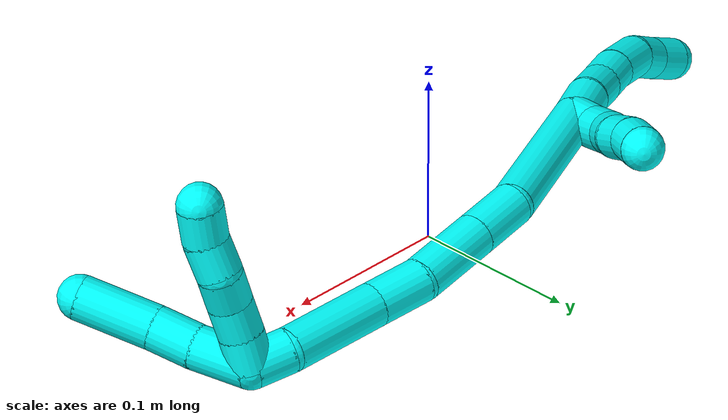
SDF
<sdf version="1.7">
 <world name="default">
  <model name="3">
   <static>0</static>
   <link name="3">
    <collision name="collision-cylinder-e_1_2_8">
     <pose>-0.004621 0.001472 -0.012019 -3.01969 -0.364564 2.50214</pose>
     <geometry><cylinder><radius>0.0125</radius><length>0.02592</length></cylinder></geometry>
     <surface>
      <friction><ode><mu>1.16</mu><mu2>1.16</mu2><slip1>0</slip1><slip2>0</slip2></ode></friction>
      <contact><ode><kp>1e+06</kp><kd>1</kd><max_vel>0</max_vel><min_depth>0.001</min_depth></ode></contact>
     </surface>
    </collision>
    <visual name="visual-cylinder-e_1_2_8">
     <pose>-0.004621 0.001472 -0.012019 -3.01969 -0.364564 2.50214</pose>
     <geometry><cylinder><radius>0.0125</radius><length>0.02592</length></cylinder></geometry>
     <material><ambient>0.003922 1 0.996078 1</ambient></material>
    </visual>
    <collision name="collision-cylinder-e_2_8_9">
     <pose>-0.012437 0.005878 -0.036354 -2.9078 -0.24717 1.62695</pose>
     <geometry><cylinder><radius>0.0125</radius><length>0.026118</length></cylinder></geometry>
     <surface>
      <friction><ode><mu>1.16</mu><mu2>1.16</mu2><slip1>0</slip1><slip2>0</slip2></ode></friction>
      <contact><ode><kp>1e+06</kp><kd>1</kd><max_vel>0</max_vel><min_depth>0.001</min_depth></ode></contact>
     </surface>
    </collision>
    <visual name="visual-cylinder-e_2_8_9">
     <pose>-0.012437 0.005878 -0.036354 -2.9078 -0.24717 1.62695</pose>
     <geometry><cylinder><radius>0.0125</radius><length>0.026118</length></cylinder></geometry>
     <material><ambient>0.003922 1 0.996078 1</ambient></material>
    </visual>
    <collision name="collision-cylinder-e_3_9_10">
     <pose>-0.019756 0.011293 -0.060261 -2.93068 -0.334893 2.02264</pose>
     <geometry><cylinder><radius>0.0125</radius><length>0.025099</length></cylinder></geometry>
     <surface>
      <friction><ode><mu>1.16</mu><mu2>1.16</mu2><slip1>0</slip1><slip2>0</slip2></ode></friction>
      <contact><ode><kp>1e+06</kp><kd>1</kd><max_vel>0</max_vel><min_depth>0.001</min_depth></ode></contact>
     </surface>
    </collision>
    <visual name="visual-cylinder-e_3_9_10">
     <pose>-0.019756 0.011293 -0.060261 -2.93068 -0.334893 2.02264</pose>
     <geometry><cylinder><radius>0.0125</radius><length>0.025099</length></cylinder></geometry>
     <material><ambient>0.003922 1 0.996078 1</ambient></material>
    </visual>
    <collision name="collision-cylinder-e_4_10_11">
     <pose>-0.028992 0.018709 -0.085848 -2.80265 -0.331661 1.54868</pose>
     <geometry><cylinder><radius>0.0125</radius><length>0.031395</length></cylinder></geometry>
     <surface>
      <friction><ode><mu>1.16</mu><mu2>1.16</mu2><slip1>0</slip1><slip2>0</slip2></ode></friction>
      <contact><ode><kp>1e+06</kp><kd>1</kd><max_vel>0</max_vel><min_depth>0.001</min_depth></ode></contact>
     </surface>
    </collision>
    <visual name="visual-cylinder-e_4_10_11">
     <pose>-0.028992 0.018709 -0.085848 -2.80265 -0.331661 1.54868</pose>
     <geometry><cylinder><radius>0.0125</radius><length>0.031395</length></cylinder></geometry>
     <material><ambient>0.003922 1 0.996078 1</ambient></material>
    </visual>
    <collision name="collision-cylinder-e_5_11_12">
     <pose>-0.035892 0.029492 -0.107972 -2.51778 -0.176807 0.536534</pose>
     <geometry><cylinder><radius>0.0125</radius><length>0.020342</length></cylinder></geometry>
     <surface>
      <friction><ode><mu>1.16</mu><mu2>1.16</mu2><slip1>0</slip1><slip2>0</slip2></ode></friction>
      <contact><ode><kp>1e+06</kp><kd>1</kd><max_vel>0</max_vel><min_depth>0.001</min_depth></ode></contact>
     </surface>
    </collision>
    <visual name="visual-cylinder-e_5_11_12">
     <pose>-0.035892 0.029492 -0.107972 -2.51778 -0.176807 0.536534</pose>
     <geometry><cylinder><radius>0.0125</radius><length>0.020342</length></cylinder></geometry>
     <material><ambient>0.003922 1 0.996078 1</ambient></material>
    </visual>
    <collision name="collision-cylinder-e_6_12_6">
     <pose>-0.040844 0.042069 -0.123603 -2.41065 -0.304066 0.761694</pose>
     <geometry><cylinder><radius>0.0125</radius><length>0.021127</length></cylinder></geometry>
     <surface>
      <friction><ode><mu>1.16</mu><mu2>1.16</mu2><slip1>0</slip1><slip2>0</slip2></ode></friction>
      <contact><ode><kp>1e+06</kp><kd>1</kd><max_vel>0</max_vel><min_depth>0.001</min_depth></ode></contact>
     </surface>
    </collision>
    <visual name="visual-cylinder-e_6_12_6">
     <pose>-0.040844 0.042069 -0.123603 -2.41065 -0.304066 0.761694</pose>
     <geometry><cylinder><radius>0.0125</radius><length>0.021127</length></cylinder></geometry>
     <material><ambient>0.003922 1 0.996078 1</ambient></material>
    </visual>
    <collision name="collision-cylinder-e_1_2_13">
     <pose>-0.003102 0.004168 0.008544 -0.453892 -0.31541 0.073413</pose>
     <geometry><cylinder><radius>0.0125</radius><length>0.02</length></cylinder></geometry>
     <surface>
      <friction><ode><mu>1.16</mu><mu2>1.16</mu2><slip1>0</slip1><slip2>0</slip2></ode></friction>
      <contact><ode><kp>1e+06</kp><kd>1</kd><max_vel>0</max_vel><min_depth>0.001</min_depth></ode></contact>
     </surface>
    </collision>
    <visual name="visual-cylinder-e_1_2_13">
     <pose>-0.003102 0.004168 0.008544 -0.453892 -0.31541 0.073413</pose>
     <geometry><cylinder><radius>0.0125</radius><length>0.02</length></cylinder></geometry>
     <material><ambient>0.003922 1 0.996078 1</ambient></material>
    </visual>
    <collision name="collision-cylinder-e_2_13_14">
     <pose>-0.009479 0.010527 0.026279 -0.233956 -0.333662 0.039573</pose>
     <geometry><cylinder><radius>0.0125</radius><length>0.02</length></cylinder></geometry>
     <surface>
      <friction><ode><mu>1.16</mu><mu2>1.16</mu2><slip1>0</slip1><slip2>0</slip2></ode></friction>
      <contact><ode><kp>1e+06</kp><kd>1</kd><max_vel>0</max_vel><min_depth>0.001</min_depth></ode></contact>
     </surface>
    </collision>
    <visual name="visual-cylinder-e_2_13_14">
     <pose>-0.009479 0.010527 0.026279 -0.233956 -0.333662 0.039573</pose>
     <geometry><cylinder><radius>0.0125</radius><length>0.02</length></cylinder></geometry>
     <material><ambient>0.003922 1 0.996078 1</ambient></material>
    </visual>
    <collision name="collision-cylinder-e_3_14_15">
     <pose>-0.014735 0.012267 0.045262 0.045938 -0.199367 -0.004595</pose>
     <geometry><cylinder><radius>0.0125</radius><length>0.02</length></cylinder></geometry>
     <surface>
      <friction><ode><mu>1.16</mu><mu2>1.16</mu2><slip1>0</slip1><slip2>0</slip2></ode></friction>
      <contact><ode><kp>1e+06</kp><kd>1</kd><max_vel>0</max_vel><min_depth>0.001</min_depth></ode></contact>
     </surface>
    </collision>
    <visual name="visual-cylinder-e_3_14_15">
     <pose>-0.014735 0.012267 0.045262 0.045938 -0.199367 -0.004595</pose>
     <geometry><cylinder><radius>0.0125</radius><length>0.02</length></cylinder></geometry>
     <material><ambient>0.003922 1 0.996078 1</ambient></material>
    </visual>
    <collision name="collision-cylinder-e_4_15_16">
     <pose>-0.020498 0.012954 0.06424 -0.123106 -0.387941 0.024212</pose>
     <geometry><cylinder><radius>0.0125</radius><length>0.02</length></cylinder></geometry>
     <surface>
      <friction><ode><mu>1.16</mu><mu2>1.16</mu2><slip1>0</slip1><slip2>0</slip2></ode></friction>
      <contact><ode><kp>1e+06</kp><kd>1</kd><max_vel>0</max_vel><min_depth>0.001</min_depth></ode></contact>
     </surface>
    </collision>
    <visual name="visual-cylinder-e_4_15_16">
     <pose>-0.020498 0.012954 0.06424 -0.123106 -0.387941 0.024212</pose>
     <geometry><cylinder><radius>0.0125</radius><length>0.02</length></cylinder></geometry>
     <material><ambient>0.003922 1 0.996078 1</ambient></material>
    </visual>
    <collision name="collision-cylinder-e_5_16_5">
     <pose>-0.025942 0.015524 0.083184 -0.145832 -0.166892 0.012219</pose>
     <geometry><cylinder><radius>0.0125</radius><length>0.02</length></cylinder></geometry>
     <surface>
      <friction><ode><mu>1.16</mu><mu2>1.16</mu2><slip1>0</slip1><slip2>0</slip2></ode></friction>
      <contact><ode><kp>1e+06</kp><kd>1</kd><max_vel>0</max_vel><min_depth>0.001</min_depth></ode></contact>
     </surface>
    </collision>
    <visual name="visual-cylinder-e_5_16_5">
     <pose>-0.025942 0.015524 0.083184 -0.145832 -0.166892 0.012219</pose>
     <geometry><cylinder><radius>0.0125</radius><length>0.02</length></cylinder></geometry>
     <material><ambient>0.003922 1 0.996078 1</ambient></material>
    </visual>
    <collision name="collision-cylinder-e_1_2_17">
     <pose>0.021703 -0.006695 0.047066 0.141309 0.42826 0.030778</pose>
     <geometry><cylinder><radius>0.0125</radius><length>0.104518</length></cylinder></geometry>
     <surface>
      <friction><ode><mu>1.16</mu><mu2>1.16</mu2><slip1>0</slip1><slip2>0</slip2></ode></friction>
      <contact><ode><kp>1e+06</kp><kd>1</kd><max_vel>0</max_vel><min_depth>0.001</min_depth></ode></contact>
     </surface>
    </collision>
    <visual name="visual-cylinder-e_1_2_17">
     <pose>0.021703 -0.006695 0.047066 0.141309 0.42826 0.030778</pose>
     <geometry><cylinder><radius>0.0125</radius><length>0.104518</length></cylinder></geometry>
     <material><ambient>0.003922 1 0.996078 1</ambient></material>
    </visual>
    <collision name="collision-cylinder-e_2_17_18">
     <pose>0.054396 -0.017763 0.10639 0.342624 0.701289 0.12639</pose>
     <geometry><cylinder><radius>0.0125</radius><length>0.034069</length></cylinder></geometry>
     <surface>
      <friction><ode><mu>1.16</mu><mu2>1.16</mu2><slip1>0</slip1><slip2>0</slip2></ode></friction>
      <contact><ode><kp>1e+06</kp><kd>1</kd><max_vel>0</max_vel><min_depth>0.001</min_depth></ode></contact>
     </surface>
    </collision>
    <visual name="visual-cylinder-e_2_17_18">
     <pose>0.054396 -0.017763 0.10639 0.342624 0.701289 0.12639</pose>
     <geometry><cylinder><radius>0.0125</radius><length>0.034069</length></cylinder></geometry>
     <material><ambient>0.003922 1 0.996078 1</ambient></material>
    </visual>
    <collision name="collision-cylinder-e_3_18_19">
     <pose>0.080913 -0.028348 0.135778 0.347889 0.705679 0.129238</pose>
     <geometry><cylinder><radius>0.0125</radius><length>0.047878</length></cylinder></geometry>
     <surface>
      <friction><ode><mu>1.16</mu><mu2>1.16</mu2><slip1>0</slip1><slip2>0</slip2></ode></friction>
      <contact><ode><kp>1e+06</kp><kd>1</kd><max_vel>0</max_vel><min_depth>0.001</min_depth></ode></contact>
     </surface>
    </collision>
    <visual name="visual-cylinder-e_3_18_19">
     <pose>0.080913 -0.028348 0.135778 0.347889 0.705679 0.129238</pose>
     <geometry><cylinder><radius>0.0125</radius><length>0.047878</length></cylinder></geometry>
     <material><ambient>0.003922 1 0.996078 1</ambient></material>
    </visual>
    <collision name="collision-cylinder-e_4_19_20">
     <pose>0.108057 -0.041039 0.161668 0.636857 0.817502 0.283653</pose>
     <geometry><cylinder><radius>0.0125</radius><length>0.031857</length></cylinder></geometry>
     <surface>
      <friction><ode><mu>1.16</mu><mu2>1.16</mu2><slip1>0</slip1><slip2>0</slip2></ode></friction>
      <contact><ode><kp>1e+06</kp><kd>1</kd><max_vel>0</max_vel><min_depth>0.001</min_depth></ode></contact>
     </surface>
    </collision>
    <visual name="visual-cylinder-e_4_19_20">
     <pose>0.108057 -0.041039 0.161668 0.636857 0.817502 0.283653</pose>
     <geometry><cylinder><radius>0.0125</radius><length>0.031857</length></cylinder></geometry>
     <material><ambient>0.003922 1 0.996078 1</ambient></material>
    </visual>
    <collision name="collision-cylinder-e_5_20_21">
     <pose>0.139246 -0.059574 0.189225 0.570268 0.719615 0.219647</pose>
     <geometry><cylinder><radius>0.0125</radius><length>0.059385</length></cylinder></geometry>
     <surface>
      <friction><ode><mu>1.16</mu><mu2>1.16</mu2><slip1>0</slip1><slip2>0</slip2></ode></friction>
      <contact><ode><kp>1e+06</kp><kd>1</kd><max_vel>0</max_vel><min_depth>0.001</min_depth></ode></contact>
     </surface>
    </collision>
    <visual name="visual-cylinder-e_5_20_21">
     <pose>0.139246 -0.059574 0.189225 0.570268 0.719615 0.219647</pose>
     <geometry><cylinder><radius>0.0125</radius><length>0.059385</length></cylinder></geometry>
     <material><ambient>0.003922 1 0.996078 1</ambient></material>
    </visual>
    <collision name="collision-cylinder-e_6_21_1">
     <pose>0.167723 -0.076821 0.212258 0.88647 0.925814 0.46528</pose>
     <geometry><cylinder><radius>0.0125</radius><length>0.022293</length></cylinder></geometry>
     <surface>
      <friction><ode><mu>1.16</mu><mu2>1.16</mu2><slip1>0</slip1><slip2>0</slip2></ode></friction>
      <contact><ode><kp>1e+06</kp><kd>1</kd><max_vel>0</max_vel><min_depth>0.001</min_depth></ode></contact>
     </surface>
    </collision>
    <visual name="visual-cylinder-e_6_21_1">
     <pose>0.167723 -0.076821 0.212258 0.88647 0.925814 0.46528</pose>
     <geometry><cylinder><radius>0.0125</radius><length>0.022293</length></cylinder></geometry>
     <material><ambient>0.003922 1 0.996078 1</ambient></material>
    </visual>
    <collision name="collision-cylinder-e_1_1_22">
     <pose>0.184034 -0.094503 0.210223 2.0361 0.487183 0.765957</pose>
     <geometry><cylinder><radius>0.0125</radius><length>0.031629</length></cylinder></geometry>
     <surface>
      <friction><ode><mu>1.16</mu><mu2>1.16</mu2><slip1>0</slip1><slip2>0</slip2></ode></friction>
      <contact><ode><kp>1e+06</kp><kd>1</kd><max_vel>0</max_vel><min_depth>0.001</min_depth></ode></contact>
     </surface>
    </collision>
    <visual name="visual-cylinder-e_1_1_22">
     <pose>0.184034 -0.094503 0.210223 2.0361 0.487183 0.765957</pose>
     <geometry><cylinder><radius>0.0125</radius><length>0.031629</length></cylinder></geometry>
     <material><ambient>0.003922 1 0.996078 1</ambient></material>
    </visual>
    <collision name="collision-cylinder-e_2_22_23">
     <pose>0.196154 -0.117596 0.199395 1.97673 0.38792 0.579664</pose>
     <geometry><cylinder><radius>0.0125</radius><length>0.024937</length></cylinder></geometry>
     <surface>
      <friction><ode><mu>1.16</mu><mu2>1.16</mu2><slip1>0</slip1><slip2>0</slip2></ode></friction>
      <contact><ode><kp>1e+06</kp><kd>1</kd><max_vel>0</max_vel><min_depth>0.001</min_depth></ode></contact>
     </surface>
    </collision>
    <visual name="visual-cylinder-e_2_22_23">
     <pose>0.196154 -0.117596 0.199395 1.97673 0.38792 0.579664</pose>
     <geometry><cylinder><radius>0.0125</radius><length>0.024937</length></cylinder></geometry>
     <material><ambient>0.003922 1 0.996078 1</ambient></material>
    </visual>
    <collision name="collision-cylinder-e_3_23_4">
     <pose>0.209698 -0.147149 0.188955 1.87181 0.418629 0.561511</pose>
     <geometry><cylinder><radius>0.0125</radius><length>0.043434</length></cylinder></geometry>
     <surface>
      <friction><ode><mu>1.16</mu><mu2>1.16</mu2><slip1>0</slip1><slip2>0</slip2></ode></friction>
      <contact><ode><kp>1e+06</kp><kd>1</kd><max_vel>0</max_vel><min_depth>0.001</min_depth></ode></contact>
     </surface>
    </collision>
    <visual name="visual-cylinder-e_3_23_4">
     <pose>0.209698 -0.147149 0.188955 1.87181 0.418629 0.561511</pose>
     <geometry><cylinder><radius>0.0125</radius><length>0.043434</length></cylinder></geometry>
     <material><ambient>0.003922 1 0.996078 1</ambient></material>
    </visual>
    <collision name="collision-cylinder-e_1_1_24">
     <pose>0.17131 -0.09039 0.217732 1.42397 -0.560964 -0.487334</pose>
     <geometry><cylinder><radius>0.0125</radius><length>0.02</length></cylinder></geometry>
     <surface>
      <friction><ode><mu>1.16</mu><mu2>1.16</mu2><slip1>0</slip1><slip2>0</slip2></ode></friction>
      <contact><ode><kp>1e+06</kp><kd>1</kd><max_vel>0</max_vel><min_depth>0.001</min_depth></ode></contact>
     </surface>
    </collision>
    <visual name="visual-cylinder-e_1_1_24">
     <pose>0.17131 -0.09039 0.217732 1.42397 -0.560964 -0.487334</pose>
     <geometry><cylinder><radius>0.0125</radius><length>0.02</length></cylinder></geometry>
     <material><ambient>0.003922 1 0.996078 1</ambient></material>
    </visual>
    <collision name="collision-cylinder-e_2_24_25">
     <pose>0.161112 -0.107227 0.221119 1.32225 -0.509618 -0.399832</pose>
     <geometry><cylinder><radius>0.0125</radius><length>0.02</length></cylinder></geometry>
     <surface>
      <friction><ode><mu>1.16</mu><mu2>1.16</mu2><slip1>0</slip1><slip2>0</slip2></ode></friction>
      <contact><ode><kp>1e+06</kp><kd>1</kd><max_vel>0</max_vel><min_depth>0.001</min_depth></ode></contact>
     </surface>
    </collision>
    <visual name="visual-cylinder-e_2_24_25">
     <pose>0.161112 -0.107227 0.221119 1.32225 -0.509618 -0.399832</pose>
     <geometry><cylinder><radius>0.0125</radius><length>0.02</length></cylinder></geometry>
     <material><ambient>0.003922 1 0.996078 1</ambient></material>
    </visual>
    <collision name="collision-cylinder-e_3_25_26">
     <pose>0.151318 -0.123509 0.227096 1.11535 -0.513846 -0.324851</pose>
     <geometry><cylinder><radius>0.0125</radius><length>0.02</length></cylinder></geometry>
     <surface>
      <friction><ode><mu>1.16</mu><mu2>1.16</mu2><slip1>0</slip1><slip2>0</slip2></ode></friction>
      <contact><ode><kp>1e+06</kp><kd>1</kd><max_vel>0</max_vel><min_depth>0.001</min_depth></ode></contact>
     </surface>
    </collision>
    <visual name="visual-cylinder-e_3_25_26">
     <pose>0.151318 -0.123509 0.227096 1.11535 -0.513846 -0.324851</pose>
     <geometry><cylinder><radius>0.0125</radius><length>0.02</length></cylinder></geometry>
     <material><ambient>0.003922 1 0.996078 1</ambient></material>
    </visual>
    <collision name="collision-cylinder-e_4_26_27">
     <pose>0.14193 -0.140224 0.231868 1.46535 -0.463766 -0.418689</pose>
     <geometry><cylinder><radius>0.0125</radius><length>0.02</length></cylinder></geometry>
     <surface>
      <friction><ode><mu>1.16</mu><mu2>1.16</mu2><slip1>0</slip1><slip2>0</slip2></ode></friction>
      <contact><ode><kp>1e+06</kp><kd>1</kd><max_vel>0</max_vel><min_depth>0.001</min_depth></ode></contact>
     </surface>
    </collision>
    <visual name="visual-cylinder-e_4_26_27">
     <pose>0.14193 -0.140224 0.231868 1.46535 -0.463766 -0.418689</pose>
     <geometry><cylinder><radius>0.0125</radius><length>0.02</length></cylinder></geometry>
     <material><ambient>0.003922 1 0.996078 1</ambient></material>
    </visual>
    <collision name="collision-cylinder-e_5_27_3">
     <pose>0.131303 -0.156684 0.235022 1.28633 -0.662826 -0.504794</pose>
     <geometry><cylinder><radius>0.0125</radius><length>0.02</length></cylinder></geometry>
     <surface>
      <friction><ode><mu>1.16</mu><mu2>1.16</mu2><slip1>0</slip1><slip2>0</slip2></ode></friction>
      <contact><ode><kp>1e+06</kp><kd>1</kd><max_vel>0</max_vel><min_depth>0.001</min_depth></ode></contact>
     </surface>
    </collision>
    <visual name="visual-cylinder-e_5_27_3">
     <pose>0.131303 -0.156684 0.235022 1.28633 -0.662826 -0.504794</pose>
     <geometry><cylinder><radius>0.0125</radius><length>0.02</length></cylinder></geometry>
     <material><ambient>0.003922 1 0.996078 1</ambient></material>
    </visual>
    <collision name="collision-sphere-3">
     <pose>0.12515 -0.16425 0.237234 0 -0 0</pose>
     <geometry><sphere><radius>0.0125</radius></sphere></geometry>
     <surface>
      <friction><ode><mu>1.16</mu><mu2>1.16</mu2><slip1>0</slip1><slip2>0</slip2></ode></friction>
      <contact><ode><kp>1e+06</kp><kd>1</kd><max_vel>0</max_vel><min_depth>0.001</min_depth></ode></contact>
     </surface>
    </collision>
    <visual name="visual-sphere-3">
     <pose>0.12515 -0.16425 0.237234 0 -0 0</pose>
     <geometry><sphere><radius>0.0125</radius></sphere></geometry>
     <material><ambient>0.003922 1 0.996078 1</ambient></material>
    </visual>
    <collision name="collision-sphere-27">
     <pose>0.137456 -0.149118 0.23281 0 -0 0</pose>
     <geometry><sphere><radius>0.0125</radius></sphere></geometry>
     <surface>
      <friction><ode><mu>1.16</mu><mu2>1.16</mu2><slip1>0</slip1><slip2>0</slip2></ode></friction>
      <contact><ode><kp>1e+06</kp><kd>1</kd><max_vel>0</max_vel><min_depth>0.001</min_depth></ode></contact>
     </surface>
    </collision>
    <visual name="visual-sphere-27">
     <pose>0.137456 -0.149118 0.23281 0 -0 0</pose>
     <geometry><sphere><radius>0.0125</radius></sphere></geometry>
     <material><ambient>0.003922 1 0.996078 1</ambient></material>
    </visual>
    <collision name="collision-sphere-26">
     <pose>0.146403 -0.13133 0.230927 0 -0 0</pose>
     <geometry><sphere><radius>0.0125</radius></sphere></geometry>
     <surface>
      <friction><ode><mu>1.16</mu><mu2>1.16</mu2><slip1>0</slip1><slip2>0</slip2></ode></friction>
      <contact><ode><kp>1e+06</kp><kd>1</kd><max_vel>0</max_vel><min_depth>0.001</min_depth></ode></contact>
     </surface>
    </collision>
    <visual name="visual-sphere-26">
     <pose>0.146403 -0.13133 0.230927 0 -0 0</pose>
     <geometry><sphere><radius>0.0125</radius></sphere></geometry>
     <material><ambient>0.003922 1 0.996078 1</ambient></material>
    </visual>
    <collision name="collision-sphere-25">
     <pose>0.156233 -0.115688 0.223266 0 -0 0</pose>
     <geometry><sphere><radius>0.0125</radius></sphere></geometry>
     <surface>
      <friction><ode><mu>1.16</mu><mu2>1.16</mu2><slip1>0</slip1><slip2>0</slip2></ode></friction>
      <contact><ode><kp>1e+06</kp><kd>1</kd><max_vel>0</max_vel><min_depth>0.001</min_depth></ode></contact>
     </surface>
    </collision>
    <visual name="visual-sphere-25">
     <pose>0.156233 -0.115688 0.223266 0 -0 0</pose>
     <geometry><sphere><radius>0.0125</radius></sphere></geometry>
     <material><ambient>0.003922 1 0.996078 1</ambient></material>
    </visual>
    <collision name="collision-sphere-24">
     <pose>0.16599 -0.098766 0.218971 0 -0 0</pose>
     <geometry><sphere><radius>0.0125</radius></sphere></geometry>
     <surface>
      <friction><ode><mu>1.16</mu><mu2>1.16</mu2><slip1>0</slip1><slip2>0</slip2></ode></friction>
      <contact><ode><kp>1e+06</kp><kd>1</kd><max_vel>0</max_vel><min_depth>0.001</min_depth></ode></contact>
     </surface>
    </collision>
    <visual name="visual-sphere-24">
     <pose>0.16599 -0.098766 0.218971 0 -0 0</pose>
     <geometry><sphere><radius>0.0125</radius></sphere></geometry>
     <material><ambient>0.003922 1 0.996078 1</ambient></material>
    </visual>
    <collision name="collision-sphere-4">
     <pose>0.218526 -0.166099 0.183072 0 -0 0</pose>
     <geometry><sphere><radius>0.0125</radius></sphere></geometry>
     <surface>
      <friction><ode><mu>1.16</mu><mu2>1.16</mu2><slip1>0</slip1><slip2>0</slip2></ode></friction>
      <contact><ode><kp>1e+06</kp><kd>1</kd><max_vel>0</max_vel><min_depth>0.001</min_depth></ode></contact>
     </surface>
    </collision>
    <visual name="visual-sphere-4">
     <pose>0.218526 -0.166099 0.183072 0 -0 0</pose>
     <geometry><sphere><radius>0.0125</radius></sphere></geometry>
     <material><ambient>0.003922 1 0.996078 1</ambient></material>
    </visual>
    <collision name="collision-sphere-23">
     <pose>0.20087 -0.1282 0.194838 0 -0 0</pose>
     <geometry><sphere><radius>0.0125</radius></sphere></geometry>
     <surface>
      <friction><ode><mu>1.16</mu><mu2>1.16</mu2><slip1>0</slip1><slip2>0</slip2></ode></friction>
      <contact><ode><kp>1e+06</kp><kd>1</kd><max_vel>0</max_vel><min_depth>0.001</min_depth></ode></contact>
     </surface>
    </collision>
    <visual name="visual-sphere-23">
     <pose>0.20087 -0.1282 0.194838 0 -0 0</pose>
     <geometry><sphere><radius>0.0125</radius></sphere></geometry>
     <material><ambient>0.003922 1 0.996078 1</ambient></material>
    </visual>
    <collision name="collision-sphere-22">
     <pose>0.191437 -0.106992 0.203953 0 -0 0</pose>
     <geometry><sphere><radius>0.0125</radius></sphere></geometry>
     <surface>
      <friction><ode><mu>1.16</mu><mu2>1.16</mu2><slip1>0</slip1><slip2>0</slip2></ode></friction>
      <contact><ode><kp>1e+06</kp><kd>1</kd><max_vel>0</max_vel><min_depth>0.001</min_depth></ode></contact>
     </surface>
    </collision>
    <visual name="visual-sphere-22">
     <pose>0.191437 -0.106992 0.203953 0 -0 0</pose>
     <geometry><sphere><radius>0.0125</radius></sphere></geometry>
     <material><ambient>0.003922 1 0.996078 1</ambient></material>
    </visual>
    <collision name="collision-sphere-1">
     <pose>0.17663 -0.082014 0.216494 0 -0 0</pose>
     <geometry><sphere><radius>0.0125</radius></sphere></geometry>
     <surface>
      <friction><ode><mu>1.16</mu><mu2>1.16</mu2><slip1>0</slip1><slip2>0</slip2></ode></friction>
      <contact><ode><kp>1e+06</kp><kd>1</kd><max_vel>0</max_vel><min_depth>0.001</min_depth></ode></contact>
     </surface>
    </collision>
    <visual name="visual-sphere-1">
     <pose>0.17663 -0.082014 0.216494 0 -0 0</pose>
     <geometry><sphere><radius>0.0125</radius></sphere></geometry>
     <material><ambient>0.003922 1 0.996078 1</ambient></material>
    </visual>
    <collision name="collision-sphere-21">
     <pose>0.158816 -0.071629 0.208022 0 -0 0</pose>
     <geometry><sphere><radius>0.0125</radius></sphere></geometry>
     <surface>
      <friction><ode><mu>1.16</mu><mu2>1.16</mu2><slip1>0</slip1><slip2>0</slip2></ode></friction>
      <contact><ode><kp>1e+06</kp><kd>1</kd><max_vel>0</max_vel><min_depth>0.001</min_depth></ode></contact>
     </surface>
    </collision>
    <visual name="visual-sphere-21">
     <pose>0.158816 -0.071629 0.208022 0 -0 0</pose>
     <geometry><sphere><radius>0.0125</radius></sphere></geometry>
     <material><ambient>0.003922 1 0.996078 1</ambient></material>
    </visual>
    <collision name="collision-sphere-12">
     <pose>-0.037681 0.035341 -0.116099 0 -0 0</pose>
     <geometry><sphere><radius>0.0125</radius></sphere></geometry>
     <surface>
      <friction><ode><mu>1.16</mu><mu2>1.16</mu2><slip1>0</slip1><slip2>0</slip2></ode></friction>
      <contact><ode><kp>1e+06</kp><kd>1</kd><max_vel>0</max_vel><min_depth>0.001</min_depth></ode></contact>
     </surface>
    </collision>
    <visual name="visual-sphere-12">
     <pose>-0.037681 0.035341 -0.116099 0 -0 0</pose>
     <geometry><sphere><radius>0.0125</radius></sphere></geometry>
     <material><ambient>0.003922 1 0.996078 1</ambient></material>
    </visual>
    <collision name="collision-sphere-11">
     <pose>-0.034103 0.023644 -0.099846 0 -0 0</pose>
     <geometry><sphere><radius>0.0125</radius></sphere></geometry>
     <surface>
      <friction><ode><mu>1.16</mu><mu2>1.16</mu2><slip1>0</slip1><slip2>0</slip2></ode></friction>
      <contact><ode><kp>1e+06</kp><kd>1</kd><max_vel>0</max_vel><min_depth>0.001</min_depth></ode></contact>
     </surface>
    </collision>
    <visual name="visual-sphere-11">
     <pose>-0.034103 0.023644 -0.099846 0 -0 0</pose>
     <geometry><sphere><radius>0.0125</radius></sphere></geometry>
     <material><ambient>0.003922 1 0.996078 1</ambient></material>
    </visual>
    <collision name="collision-sphere-10">
     <pose>-0.023881 0.013774 -0.071851 0 -0 0</pose>
     <geometry><sphere><radius>0.0125</radius></sphere></geometry>
     <surface>
      <friction><ode><mu>1.16</mu><mu2>1.16</mu2><slip1>0</slip1><slip2>0</slip2></ode></friction>
      <contact><ode><kp>1e+06</kp><kd>1</kd><max_vel>0</max_vel><min_depth>0.001</min_depth></ode></contact>
     </surface>
    </collision>
    <visual name="visual-sphere-10">
     <pose>-0.023881 0.013774 -0.071851 0 -0 0</pose>
     <geometry><sphere><radius>0.0125</radius></sphere></geometry>
     <material><ambient>0.003922 1 0.996078 1</ambient></material>
    </visual>
    <collision name="collision-sphere-9">
     <pose>-0.015632 0.008812 -0.048672 0 -0 0</pose>
     <geometry><sphere><radius>0.0125</radius></sphere></geometry>
     <surface>
      <friction><ode><mu>1.16</mu><mu2>1.16</mu2><slip1>0</slip1><slip2>0</slip2></ode></friction>
      <contact><ode><kp>1e+06</kp><kd>1</kd><max_vel>0</max_vel><min_depth>0.001</min_depth></ode></contact>
     </surface>
    </collision>
    <visual name="visual-sphere-9">
     <pose>-0.015632 0.008812 -0.048672 0 -0 0</pose>
     <geometry><sphere><radius>0.0125</radius></sphere></geometry>
     <material><ambient>0.003922 1 0.996078 1</ambient></material>
    </visual>
    <collision name="collision-sphere-2">
     <geometry><sphere><radius>0.0125</radius></sphere></geometry>
     <surface>
      <friction><ode><mu>1.16</mu><mu2>1.16</mu2><slip1>0</slip1><slip2>0</slip2></ode></friction>
      <contact><ode><kp>1e+06</kp><kd>1</kd><max_vel>0</max_vel><min_depth>0.001</min_depth></ode></contact>
     </surface>
    </collision>
    <visual name="visual-sphere-2">
     <geometry><sphere><radius>0.0125</radius></sphere></geometry>
     <material><ambient>0.003922 1 0.996078 1</ambient></material>
    </visual>
    <collision name="collision-sphere-19">
     <pose>0.096438 -0.03456 0.152908 0 -0 0</pose>
     <geometry><sphere><radius>0.0125</radius></sphere></geometry>
     <surface>
      <friction><ode><mu>1.16</mu><mu2>1.16</mu2><slip1>0</slip1><slip2>0</slip2></ode></friction>
      <contact><ode><kp>1e+06</kp><kd>1</kd><max_vel>0</max_vel><min_depth>0.001</min_depth></ode></contact>
     </surface>
    </collision>
    <visual name="visual-sphere-19">
     <pose>0.096438 -0.03456 0.152908 0 -0 0</pose>
     <geometry><sphere><radius>0.0125</radius></sphere></geometry>
     <material><ambient>0.003922 1 0.996078 1</ambient></material>
    </visual>
    <collision name="collision-sphere-8">
     <pose>-0.009242 0.002945 -0.024037 0 -0 0</pose>
     <geometry><sphere><radius>0.0125</radius></sphere></geometry>
     <surface>
      <friction><ode><mu>1.16</mu><mu2>1.16</mu2><slip1>0</slip1><slip2>0</slip2></ode></friction>
      <contact><ode><kp>1e+06</kp><kd>1</kd><max_vel>0</max_vel><min_depth>0.001</min_depth></ode></contact>
     </surface>
    </collision>
    <visual name="visual-sphere-8">
     <pose>-0.009242 0.002945 -0.024037 0 -0 0</pose>
     <geometry><sphere><radius>0.0125</radius></sphere></geometry>
     <material><ambient>0.003922 1 0.996078 1</ambient></material>
    </visual>
    <collision name="collision-sphere-6">
     <pose>-0.044007 0.048798 -0.131108 0 -0 0</pose>
     <geometry><sphere><radius>0.0125</radius></sphere></geometry>
     <surface>
      <friction><ode><mu>1.16</mu><mu2>1.16</mu2><slip1>0</slip1><slip2>0</slip2></ode></friction>
      <contact><ode><kp>1e+06</kp><kd>1</kd><max_vel>0</max_vel><min_depth>0.001</min_depth></ode></contact>
     </surface>
    </collision>
    <visual name="visual-sphere-6">
     <pose>-0.044007 0.048798 -0.131108 0 -0 0</pose>
     <geometry><sphere><radius>0.0125</radius></sphere></geometry>
     <material><ambient>0.003922 1 0.996078 1</ambient></material>
    </visual>
    <collision name="collision-sphere-13">
     <pose>-0.006204 0.008337 0.017088 0 -0 0</pose>
     <geometry><sphere><radius>0.0125</radius></sphere></geometry>
     <surface>
      <friction><ode><mu>1.16</mu><mu2>1.16</mu2><slip1>0</slip1><slip2>0</slip2></ode></friction>
      <contact><ode><kp>1e+06</kp><kd>1</kd><max_vel>0</max_vel><min_depth>0.001</min_depth></ode></contact>
     </surface>
    </collision>
    <visual name="visual-sphere-13">
     <pose>-0.006204 0.008337 0.017088 0 -0 0</pose>
     <geometry><sphere><radius>0.0125</radius></sphere></geometry>
     <material><ambient>0.003922 1 0.996078 1</ambient></material>
    </visual>
    <collision name="collision-sphere-14">
     <pose>-0.012754 0.012718 0.03547 0 -0 0</pose>
     <geometry><sphere><radius>0.0125</radius></sphere></geometry>
     <surface>
      <friction><ode><mu>1.16</mu><mu2>1.16</mu2><slip1>0</slip1><slip2>0</slip2></ode></friction>
      <contact><ode><kp>1e+06</kp><kd>1</kd><max_vel>0</max_vel><min_depth>0.001</min_depth></ode></contact>
     </surface>
    </collision>
    <visual name="visual-sphere-14">
     <pose>-0.012754 0.012718 0.03547 0 -0 0</pose>
     <geometry><sphere><radius>0.0125</radius></sphere></geometry>
     <material><ambient>0.003922 1 0.996078 1</ambient></material>
    </visual>
    <collision name="collision-sphere-15">
     <pose>-0.016715 0.011817 0.055054 0 -0 0</pose>
     <geometry><sphere><radius>0.0125</radius></sphere></geometry>
     <surface>
      <friction><ode><mu>1.16</mu><mu2>1.16</mu2><slip1>0</slip1><slip2>0</slip2></ode></friction>
      <contact><ode><kp>1e+06</kp><kd>1</kd><max_vel>0</max_vel><min_depth>0.001</min_depth></ode></contact>
     </surface>
    </collision>
    <visual name="visual-sphere-15">
     <pose>-0.016715 0.011817 0.055054 0 -0 0</pose>
     <geometry><sphere><radius>0.0125</radius></sphere></geometry>
     <material><ambient>0.003922 1 0.996078 1</ambient></material>
    </visual>
    <collision name="collision-sphere-16">
     <pose>-0.024281 0.014091 0.073427 0 -0 0</pose>
     <geometry><sphere><radius>0.0125</radius></sphere></geometry>
     <surface>
      <friction><ode><mu>1.16</mu><mu2>1.16</mu2><slip1>0</slip1><slip2>0</slip2></ode></friction>
      <contact><ode><kp>1e+06</kp><kd>1</kd><max_vel>0</max_vel><min_depth>0.001</min_depth></ode></contact>
     </surface>
    </collision>
    <visual name="visual-sphere-16">
     <pose>-0.024281 0.014091 0.073427 0 -0 0</pose>
     <geometry><sphere><radius>0.0125</radius></sphere></geometry>
     <material><ambient>0.003922 1 0.996078 1</ambient></material>
    </visual>
    <collision name="collision-sphere-5">
     <pose>-0.027603 0.016957 0.09294 0 -0 0</pose>
     <geometry><sphere><radius>0.0125</radius></sphere></geometry>
     <surface>
      <friction><ode><mu>1.16</mu><mu2>1.16</mu2><slip1>0</slip1><slip2>0</slip2></ode></friction>
      <contact><ode><kp>1e+06</kp><kd>1</kd><max_vel>0</max_vel><min_depth>0.001</min_depth></ode></contact>
     </surface>
    </collision>
    <visual name="visual-sphere-5">
     <pose>-0.027603 0.016957 0.09294 0 -0 0</pose>
     <geometry><sphere><radius>0.0125</radius></sphere></geometry>
     <material><ambient>0.003922 1 0.996078 1</ambient></material>
    </visual>
    <collision name="collision-sphere-17">
     <pose>0.043405 -0.013391 0.094132 0 -0 0</pose>
     <geometry><sphere><radius>0.0125</radius></sphere></geometry>
     <surface>
      <friction><ode><mu>1.16</mu><mu2>1.16</mu2><slip1>0</slip1><slip2>0</slip2></ode></friction>
      <contact><ode><kp>1e+06</kp><kd>1</kd><max_vel>0</max_vel><min_depth>0.001</min_depth></ode></contact>
     </surface>
    </collision>
    <visual name="visual-sphere-17">
     <pose>0.043405 -0.013391 0.094132 0 -0 0</pose>
     <geometry><sphere><radius>0.0125</radius></sphere></geometry>
     <material><ambient>0.003922 1 0.996078 1</ambient></material>
    </visual>
    <collision name="collision-sphere-18">
     <pose>0.065387 -0.022136 0.118648 0 -0 0</pose>
     <geometry><sphere><radius>0.0125</radius></sphere></geometry>
     <surface>
      <friction><ode><mu>1.16</mu><mu2>1.16</mu2><slip1>0</slip1><slip2>0</slip2></ode></friction>
      <contact><ode><kp>1e+06</kp><kd>1</kd><max_vel>0</max_vel><min_depth>0.001</min_depth></ode></contact>
     </surface>
    </collision>
    <visual name="visual-sphere-18">
     <pose>0.065387 -0.022136 0.118648 0 -0 0</pose>
     <geometry><sphere><radius>0.0125</radius></sphere></geometry>
     <material><ambient>0.003922 1 0.996078 1</ambient></material>
    </visual>
    <collision name="collision-sphere-20">
     <pose>0.119676 -0.047519 0.170428 0 -0 0</pose>
     <geometry><sphere><radius>0.0125</radius></sphere></geometry>
     <surface>
      <friction><ode><mu>1.16</mu><mu2>1.16</mu2><slip1>0</slip1><slip2>0</slip2></ode></friction>
      <contact><ode><kp>1e+06</kp><kd>1</kd><max_vel>0</max_vel><min_depth>0.001</min_depth></ode></contact>
     </surface>
    </collision>
    <visual name="visual-sphere-20">
     <pose>0.119676 -0.047519 0.170428 0 -0 0</pose>
     <geometry><sphere><radius>0.0125</radius></sphere></geometry>
     <material><ambient>0.003922 1 0.996078 1</ambient></material>
    </visual>
    <inertial>
     <pose>0.071316 -0.040311 0.09723 0 -0 0</pose>
     <mass>0.75</mass>
     <inertia>
      <ixx>0.000176</ixx>
      <ixy>0</ixy>
      <ixz>0</ixz>
      <iyy>0.000159</iyy>
      <iyz>0</iyz>
      <izz>-1.2e-05</izz>
     </inertia>
    </inertial>
   </link>
   <pose>-0.096682 0.022259 0.046251 -1.21548 0.779456 -0.526471</pose>
  </model>
 </world>
</sdf>
